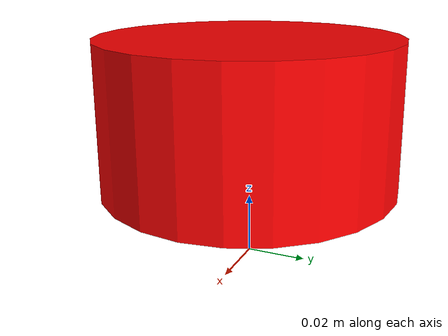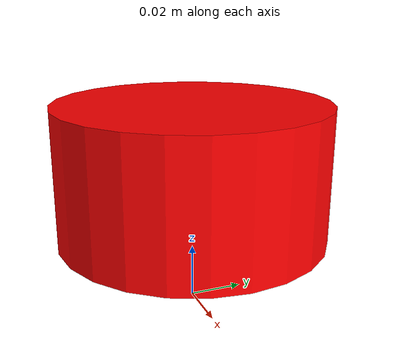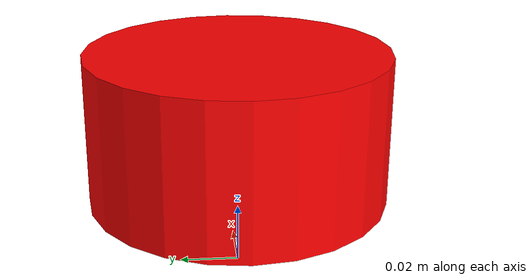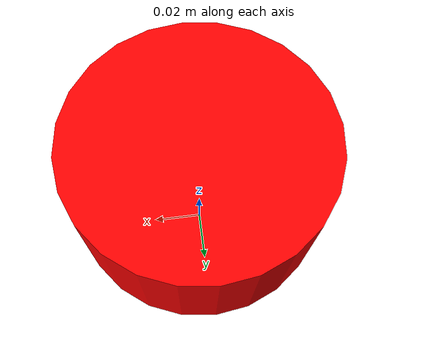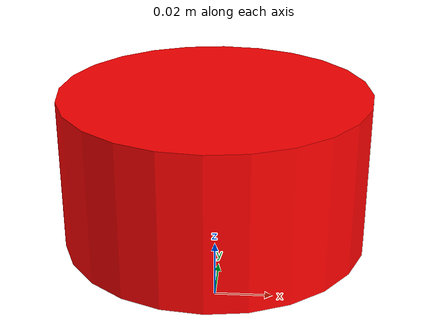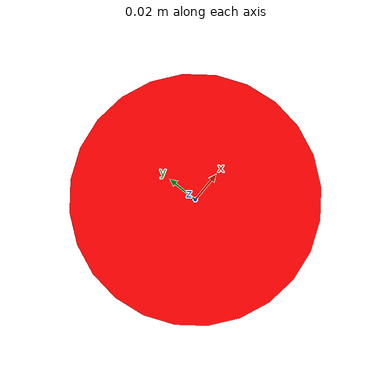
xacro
<?xml version="1.0"?>
<robot xmlns:xacro="http://www.ros.org/wiki/xacro" name="goal_box">

    <material name="white">
        <color rgba="1 1 1 1" />
    </material>

    <material name="orange">
        <color rgba="1 0.3 0.1 1"/>
    </material>

    <material name="blue">
        <color rgba="0.2 0.2 1 1"/>
    </material>

    <material name="black">
        <color rgba="0 0 0 1"/>
    </material>

    <material name="red">
        <color rgba="1 0 0 1"/>
    </material>
    <xacro:macro name="inertial_box" params="mass x y z *origin">
        <inertial>
            <xacro:insert_block name="origin"/>
            <mass value="${mass}" />
            <inertia ixx="${(1/12) * mass * (y*y+z*z)}" ixy="0.0" ixz="0.0"
                    iyy="${(1/12) * mass * (x*x+z*z)}" iyz="0.0"
                    izz="${(1/12) * mass * (x*x+y*y)}" />
        </inertial>
    </xacro:macro>
    <xacro:macro name="inertial_cylinder" params="mass length radius *origin">
        <inertial>
            <xacro:insert_block name="origin"/>
            <mass value="${mass}" />
            <inertia ixx="${(1/12) * mass * (3*radius*radius + length*length)}" ixy="0.0" ixz="0.0"
                    iyy="${(1/12) * mass * (3*radius*radius + length*length)}" iyz="0.0"
                    izz="${(1/2) * mass * (radius*radius)}" />
        </inertial>
    </xacro:macro>
    <!-- BASE LINK -->

    <link name="base_link">

    </link>

    <joint name="goal_joint" type="fixed">
        <parent link="base_link"/>
        <child link="goal"/>
        <origin xyz="0 0 0.05"/>
    </joint>

    <link name="goal">
        <visual>
            <geometry>
                <cylinder radius="0.05" length="0.05"/>
            </geometry>
            <material name="red"/>
        </visual>
        <collision>
            <geometry>
                <cylinder radius="0.05" length="0.05"/>
            </geometry>
        </collision>
        <xacro:inertial_cylinder mass="1" length="0.05" radius="0.05">
            <origin xyz="0 0 0" rpy="0 0 0"/>
        </xacro:inertial_cylinder>
    </link>

    <gazebo reference="goal">
        <material>Gazebo/Red</material>
    </gazebo>

</robot>
